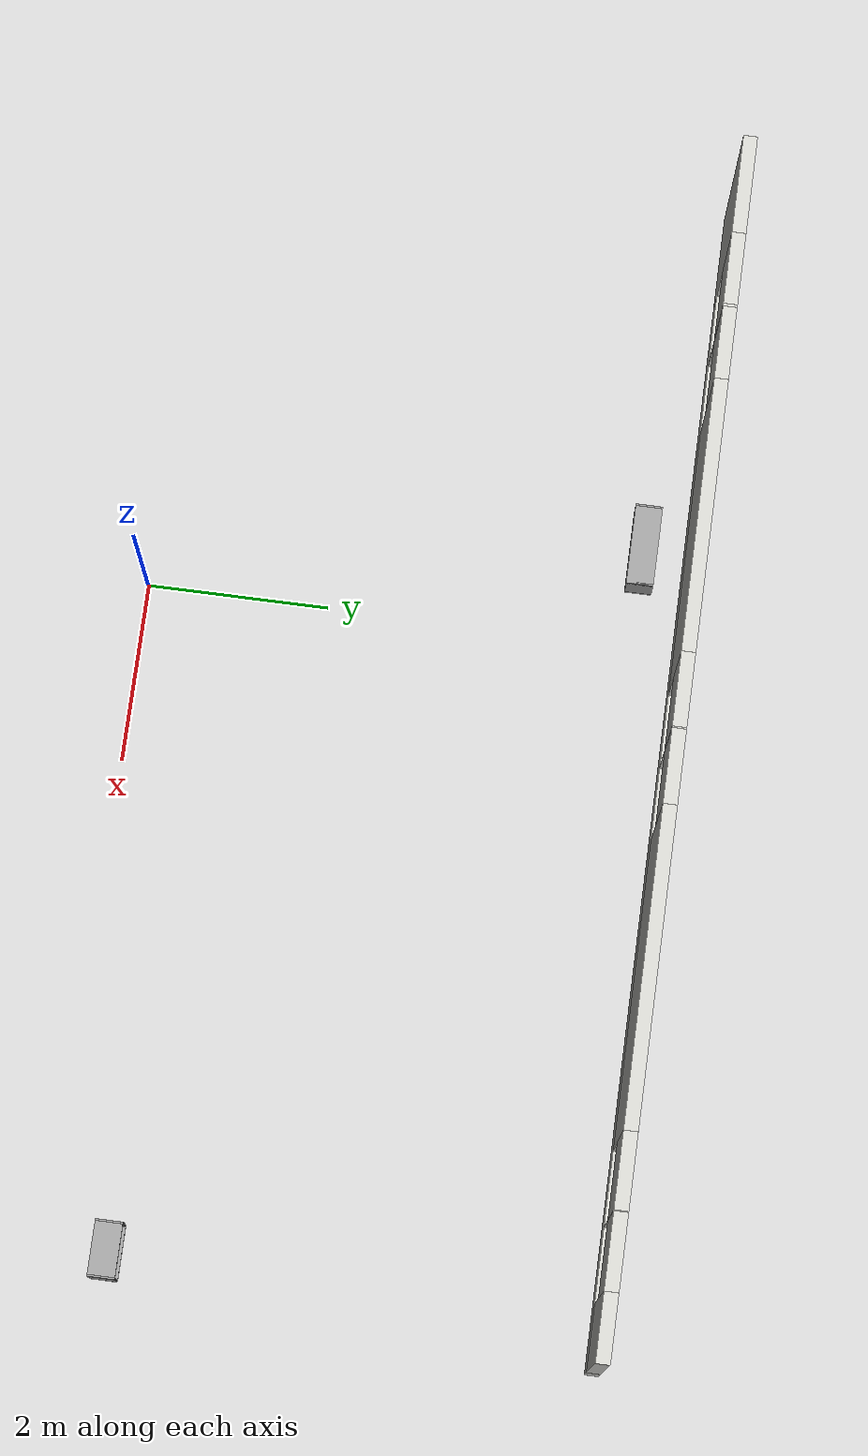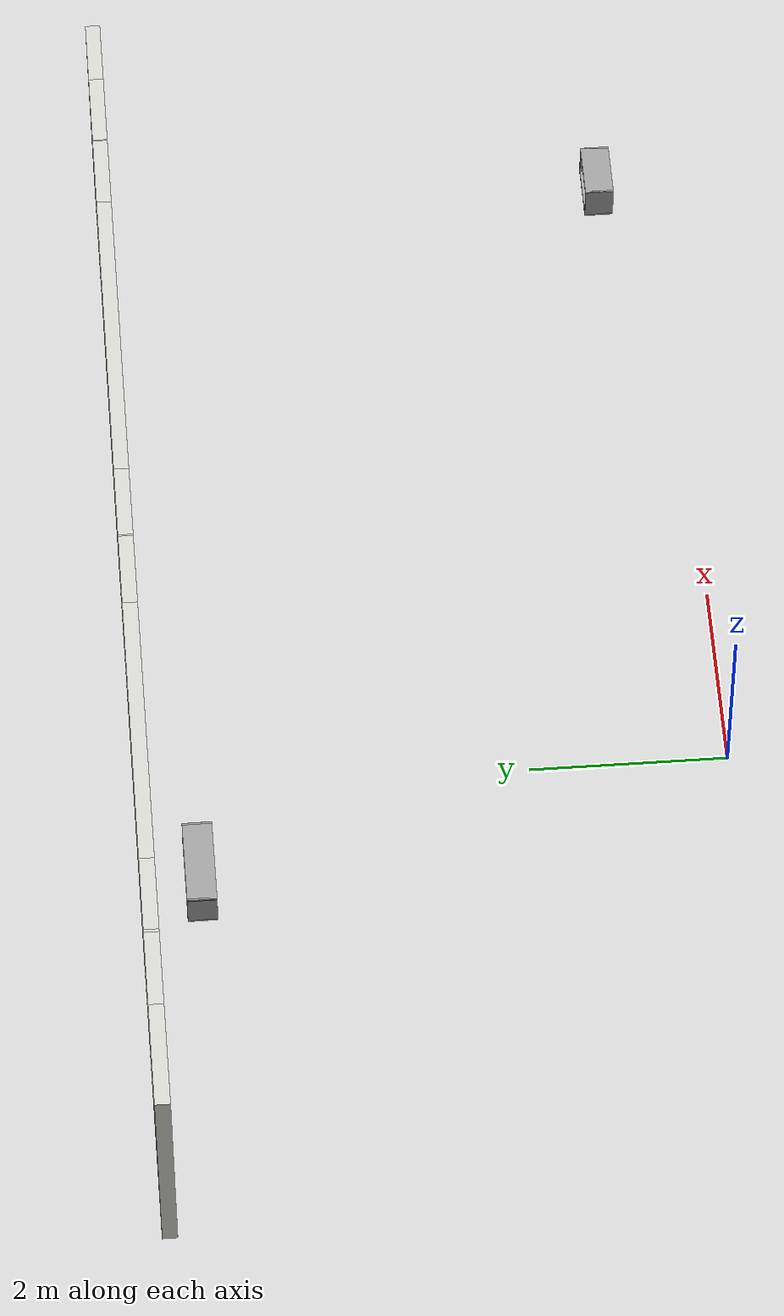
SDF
<sdf version="1.6">
 <world name="default">
  <model name="ground_plane">
   <static>1</static>
   <link name="link">
    <collision name="collision">
     <geometry><plane><normal>0 0 1</normal><size>100 100</size></plane></geometry>
     <surface><friction><ode><mu>100</mu><mu2>50</mu2></ode></friction></surface>
    </collision>
    <visual name="visual">
     <cast_shadows>0</cast_shadows>
     <geometry><plane><normal>0 0 1</normal><size>100 100</size></plane></geometry>
     <material>
      <script><uri>file://media/materials/scripts/gazebo.material</uri><name>Gazebo/Grey</name></script>
     </material>
    </visual>
   </link>
  </model>
  <model name="wall_window_tiles">
   <pose>1.41579 5.89691 0 0 -0 0</pose>
   <link name="Wall_0">
    <visual name="Wall_0_Visual_0">
     <pose>-5.9525 0 1.25 0 -0 0</pose>
     <geometry><box><size>1.095 0.15 2.5</size></box></geometry>
     <material>
      <script><uri>file://media/materials/scripts/gazebo.material</uri><name>Gazebo/CeilingTiled</name></script>
      <ambient>1 1 1 1</ambient>
     </material>
     <meta><layer>0</layer></meta>
    </visual>
    <collision name="Wall_0_Collision_0">
     <geometry><box><size>1.095 0.15 2.5</size></box></geometry>
     <pose>-5.9525 0 1.25 0 -0 0</pose>
    </collision>
    <visual name="Wall_0_Visual_1">
     <pose>0.5475 0 0.25 0 -0 0</pose>
     <geometry><box><size>11.905 0.15 0.5</size></box></geometry>
     <material>
      <script><uri>file://media/materials/scripts/gazebo.material</uri><name>Gazebo/CeilingTiled</name></script>
      <ambient>1 1 1 1</ambient>
     </material>
     <meta><layer>0</layer></meta>
    </visual>
    <collision name="Wall_0_Collision_1">
     <geometry><box><size>11.905 0.15 0.5</size></box></geometry>
     <pose>0.5475 0 0.25 0 -0 0</pose>
    </collision>
    <visual name="Wall_0_Visual_2">
     <pose>-4.59 0 1.5 0 -0 0</pose>
     <geometry><box><size>0.03 0.15 2</size></box></geometry>
     <material>
      <script><uri>file://media/materials/scripts/gazebo.material</uri><name>Gazebo/CeilingTiled</name></script>
      <ambient>1 1 1 1</ambient>
     </material>
     <meta><layer>0</layer></meta>
    </visual>
    <collision name="Wall_0_Collision_2">
     <geometry><box><size>0.03 0.15 2</size></box></geometry>
     <pose>-4.59 0 1.5 0 -0 0</pose>
    </collision>
    <visual name="Wall_0_Visual_3">
     <pose>-2.28975 0 1.5 0 -0 0</pose>
     <geometry><box><size>2.9705 0.15 2</size></box></geometry>
     <material>
      <script><uri>file://media/materials/scripts/gazebo.material</uri><name>Gazebo/CeilingTiled</name></script>
      <ambient>1 1 1 1</ambient>
     </material>
     <meta><layer>0</layer></meta>
    </visual>
    <collision name="Wall_0_Collision_3">
     <geometry><box><size>2.9705 0.15 2</size></box></geometry>
     <pose>-2.28975 0 1.5 0 -0 0</pose>
    </collision>
    <visual name="Wall_0_Visual_4">
     <pose>0.00375 0 1.5 0 -0 0</pose>
     <geometry><box><size>0.0165 0.15 2</size></box></geometry>
     <material>
      <script><uri>file://media/materials/scripts/gazebo.material</uri><name>Gazebo/CeilingTiled</name></script>
      <ambient>1 1 1 1</ambient>
     </material>
     <meta><layer>0</layer></meta>
    </visual>
    <collision name="Wall_0_Collision_4">
     <geometry><box><size>0.0165 0.15 2</size></box></geometry>
     <pose>0.00375 0 1.5 0 -0 0</pose>
    </collision>
    <visual name="Wall_0_Visual_5">
     <pose>2.4935 0 1.5 0 -0 0</pose>
     <geometry><box><size>3.363 0.15 2</size></box></geometry>
     <material>
      <script><uri>file://media/materials/scripts/gazebo.material</uri><name>Gazebo/CeilingTiled</name></script>
      <ambient>1 1 1 1</ambient>
     </material>
     <meta><layer>0</layer></meta>
    </visual>
    <collision name="Wall_0_Collision_5">
     <geometry><box><size>3.363 0.15 2</size></box></geometry>
     <pose>2.4935 0 1.5 0 -0 0</pose>
    </collision>
    <visual name="Wall_0_Visual_6">
     <pose>4.98 0 1.5 0 -0 0</pose>
     <geometry><box><size>0.01 0.15 2</size></box></geometry>
     <material>
      <script><uri>file://media/materials/scripts/gazebo.material</uri><name>Gazebo/CeilingTiled</name></script>
      <ambient>1 1 1 1</ambient>
     </material>
     <meta><layer>0</layer></meta>
    </visual>
    <collision name="Wall_0_Collision_6">
     <geometry><box><size>0.01 0.15 2</size></box></geometry>
     <pose>4.98 0 1.5 0 -0 0</pose>
    </collision>
    <visual name="Wall_0_Visual_7">
     <pose>6.1425 0 1.5 0 -0 0</pose>
     <geometry><box><size>0.715 0.15 2</size></box></geometry>
     <material>
      <script><uri>file://media/materials/scripts/gazebo.material</uri><name>Gazebo/CeilingTiled</name></script>
      <ambient>1 1 1 1</ambient>
     </material>
     <meta><layer>0</layer></meta>
    </visual>
    <collision name="Wall_0_Collision_7">
     <geometry><box><size>0.715 0.15 2</size></box></geometry>
     <pose>6.1425 0 1.5 0 -0 0</pose>
    </collision>
    <visual name="Wall_0_Visual_8">
     <pose>-5.005 0 1.9 0 -0 0</pose>
     <geometry><box><size>0.8 0.15 1.2</size></box></geometry>
     <material>
      <script><uri>file://media/materials/scripts/gazebo.material</uri><name>Gazebo/CeilingTiled</name></script>
      <ambient>1 1 1 1</ambient>
     </material>
     <meta><layer>0</layer></meta>
    </visual>
    <collision name="Wall_0_Collision_8">
     <geometry><box><size>0.8 0.15 1.2</size></box></geometry>
     <pose>-5.005 0 1.9 0 -0 0</pose>
    </collision>
    <visual name="Wall_0_Visual_9">
     <pose>-4.175 0 1.9 0 -0 0</pose>
     <geometry><box><size>0.8 0.15 1.2</size></box></geometry>
     <material>
      <script><uri>file://media/materials/scripts/gazebo.material</uri><name>Gazebo/CeilingTiled</name></script>
      <ambient>1 1 1 1</ambient>
     </material>
     <meta><layer>0</layer></meta>
    </visual>
    <collision name="Wall_0_Collision_9">
     <geometry><box><size>0.8 0.15 1.2</size></box></geometry>
     <pose>-4.175 0 1.9 0 -0 0</pose>
    </collision>
    <visual name="Wall_0_Visual_10">
     <pose>-0.4045 0 1.9 0 -0 0</pose>
     <geometry><box><size>0.8 0.15 1.2</size></box></geometry>
     <material>
      <script><uri>file://media/materials/scripts/gazebo.material</uri><name>Gazebo/CeilingTiled</name></script>
      <ambient>1 1 1 1</ambient>
     </material>
     <meta><layer>0</layer></meta>
    </visual>
    <collision name="Wall_0_Collision_10">
     <geometry><box><size>0.8 0.15 1.2</size></box></geometry>
     <pose>-0.4045 0 1.9 0 -0 0</pose>
    </collision>
    <visual name="Wall_0_Visual_11">
     <pose>0.412 0 1.9 0 -0 0</pose>
     <geometry><box><size>0.8 0.15 1.2</size></box></geometry>
     <material>
      <script><uri>file://media/materials/scripts/gazebo.material</uri><name>Gazebo/CeilingTiled</name></script>
      <ambient>1 1 1 1</ambient>
     </material>
     <meta><layer>0</layer></meta>
    </visual>
    <collision name="Wall_0_Collision_11">
     <geometry><box><size>0.8 0.15 1.2</size></box></geometry>
     <pose>0.412 0 1.9 0 -0 0</pose>
    </collision>
    <visual name="Wall_0_Visual_12">
     <pose>4.575 0 1.9 0 -0 0</pose>
     <geometry><box><size>0.8 0.15 1.2</size></box></geometry>
     <material>
      <script><uri>file://media/materials/scripts/gazebo.material</uri><name>Gazebo/CeilingTiled</name></script>
      <ambient>1 1 1 1</ambient>
     </material>
     <meta><layer>0</layer></meta>
    </visual>
    <collision name="Wall_0_Collision_12">
     <geometry><box><size>0.8 0.15 1.2</size></box></geometry>
     <pose>4.575 0 1.9 0 -0 0</pose>
    </collision>
    <visual name="Wall_0_Visual_13">
     <pose>5.385 0 1.9 0 -0 0</pose>
     <geometry><box><size>0.8 0.15 1.2</size></box></geometry>
     <material>
      <script><uri>file://media/materials/scripts/gazebo.material</uri><name>Gazebo/CeilingTiled</name></script>
      <ambient>1 1 1 1</ambient>
     </material>
     <meta><layer>0</layer></meta>
    </visual>
    <collision name="Wall_0_Collision_13">
     <geometry><box><size>0.8 0.15 1.2</size></box></geometry>
     <pose>5.385 0 1.9 0 -0 0</pose>
    </collision>
   </link>
   <static>1</static>
  </model>
  <model name="Wall_Cabinet_36x15W">
   <link name="Wall_0">
    <pose>0 0 0.01 0 -0 0</pose>
    <inertial>
     <mass>1.9796</mass>
     <inertia><ixx>0.0145</ixx><iyy>0.1511</iyy><izz>0.1367</izz><ixy>0</ixy><ixz>0</ixz><iyz>0</iyz></inertia>
    </inertial>
    <collision name="Wall_0_Collision"><geometry><box><size>0.91 0.296 0.02</size></box></geometry></collision>
    <visual name="Wall_0_Visual">
     <geometry><box><size>0.91 0.296 0.02</size></box></geometry>
     <material>
      <script><uri>file://media/materials/scripts/gazebo.material</uri><name>Gazebo/Grey</name></script>
      <ambient>1 1 1 1</ambient>
     </material>
    </visual>
   </link>
   <joint name="0_2" type="fixed">
    <pose>-0.455 0 0 0 -0 0</pose>
    <parent>Wall_2</parent>
    <child>Wall_0</child>
    <axis>
     <xyz>0 0 1</xyz>
     <use_parent_model_frame>0</use_parent_model_frame>
     <limit><lower>-1e+16</lower><upper>1e+16</upper></limit>
    </axis>
   </joint>
   <joint name="0_4" type="fixed">
    <pose>0.455 0 0 0 -0 0</pose>
    <parent>Wall_4</parent>
    <child>Wall_0</child>
    <axis>
     <xyz>0 0 1</xyz>
     <use_parent_model_frame>0</use_parent_model_frame>
     <limit><lower>-1e+16</lower><upper>1e+16</upper></limit>
    </axis>
   </joint>
   <joint name="0_8" type="fixed">
    <pose>0 -0.148 0 0 -0 0</pose>
    <parent>Wall_8</parent>
    <child>Wall_0</child>
    <axis>
     <xyz>0 0 1</xyz>
     <use_parent_model_frame>0</use_parent_model_frame>
     <limit><lower>-1e+16</lower><upper>1e+16</upper></limit>
    </axis>
   </joint>
   <link name="Wall_2">
    <pose>-0.445 0 0.192 0 -0 0</pose>
    <inertial>
     <mass>0.8353</mass>
     <inertia><ixx>0.0061</ixx><iyy>0.0164</iyy><izz>0.0103</izz><ixy>0</ixy><ixz>0</ixz><iyz>0</iyz></inertia>
    </inertial>
    <collision name="Wall_2_Collision"><geometry><box><size>0.02 0.296 0.384</size></box></geometry></collision>
    <visual name="Wall_2_Visual">
     <geometry><box><size>0.02 0.296 0.384</size></box></geometry>
     <material>
      <script><uri>file://media/materials/scripts/gazebo.material</uri><name>Gazebo/Grey</name></script>
      <ambient>1 1 1 1</ambient>
     </material>
    </visual>
   </link>
   <link name="Wall_4">
    <pose>0.445 0 0.192 0 -0 0</pose>
    <inertial>
     <mass>0.8353</mass>
     <inertia><ixx>0.0061</ixx><iyy>0.0164</iyy><izz>0.0103</izz><ixy>0</ixy><ixz>0</ixz><iyz>0</iyz></inertia>
    </inertial>
    <collision name="Wall_4_Collision"><geometry><box><size>0.02 0.296 0.384</size></box></geometry></collision>
    <visual name="Wall_4_Visual">
     <geometry><box><size>0.02 0.296 0.384</size></box></geometry>
     <material>
      <script><uri>file://media/materials/scripts/gazebo.material</uri><name>Gazebo/Grey</name></script>
      <ambient>1 1 1 1</ambient>
     </material>
    </visual>
   </link>
   <link name="Wall_6">
    <pose>0 0 0.374 0 -0 0</pose>
    <inertial>
     <mass>1.9796</mass>
     <inertia><ixx>0.0145</ixx><iyy>0.1511</iyy><izz>0.1367</izz><ixy>0</ixy><ixz>0</ixz><iyz>0</iyz></inertia>
    </inertial>
    <collision name="Wall_6_Collision"><geometry><box><size>0.91 0.296 0.02</size></box></geometry></collision>
    <visual name="Wall_6_Visual">
     <geometry><box><size>0.91 0.296 0.02</size></box></geometry>
     <material>
      <script><uri>file://media/materials/scripts/gazebo.material</uri><name>Gazebo/Grey</name></script>
      <ambient>1 1 1 1</ambient>
     </material>
    </visual>
   </link>
   <joint name="6_2" type="fixed">
    <pose>-0.455 0 0 0 -0 0</pose>
    <parent>Wall_2</parent>
    <child>Wall_6</child>
    <axis>
     <xyz>0 0 1</xyz>
     <use_parent_model_frame>0</use_parent_model_frame>
     <limit><lower>-1e+16</lower><upper>1e+16</upper></limit>
    </axis>
   </joint>
   <joint name="6_4" type="fixed">
    <pose>0.455 0 0 0 -0 0</pose>
    <parent>Wall_4</parent>
    <child>Wall_6</child>
    <axis>
     <xyz>0 0 1</xyz>
     <use_parent_model_frame>0</use_parent_model_frame>
     <limit><lower>-1e+16</lower><upper>1e+16</upper></limit>
    </axis>
   </joint>
   <joint name="6_8" type="fixed">
    <pose>0 -0.148 0 0 -0 0</pose>
    <parent>Wall_8</parent>
    <child>Wall_6</child>
    <axis>
     <xyz>0 0 1</xyz>
     <use_parent_model_frame>0</use_parent_model_frame>
     <limit><lower>-1e+16</lower><upper>1e+16</upper></limit>
    </axis>
   </joint>
   <link name="Wall_8">
    <pose>0 -0.138 0.19 0 -0 0</pose>
    <inertial>
     <mass>2.5302</mass>
     <inertia><ixx>0.0305</ixx><iyy>0.1732</iyy><izz>0.2035</izz><ixy>0</ixy><ixz>0</ixz><iyz>0</iyz></inertia>
    </inertial>
    <collision name="Wall_8_Collision"><geometry><box><size>0.906 0.02 0.38</size></box></geometry></collision>
    <visual name="Wall_8_Visual">
     <geometry><box><size>0.906 0.02 0.38</size></box></geometry>
     <material>
      <script><uri>file://media/materials/scripts/gazebo.material</uri><name>Gazebo/Grey</name></script>
      <ambient>1 1 1 1</ambient>
     </material>
    </visual>
   </link>
   <joint name="8_2" type="fixed">
    <pose>-0.453 0 0 0 -0 0</pose>
    <parent>Wall_2</parent>
    <child>Wall_8</child>
    <axis>
     <xyz>0 1 0</xyz>
     <use_parent_model_frame>0</use_parent_model_frame>
     <limit><lower>-1e+16</lower><upper>1e+16</upper></limit>
    </axis>
   </joint>
   <joint name="8_4" type="fixed">
    <pose>0.453 0 0 0 -0 0</pose>
    <parent>Wall_4</parent>
    <child>Wall_8</child>
    <axis>
     <xyz>0 1 0</xyz>
     <use_parent_model_frame>0</use_parent_model_frame>
     <limit><lower>-1e+16</lower><upper>1e+16</upper></limit>
    </axis>
   </joint>
   <static>1</static>
   <pose>-1.06804 5.36866 0 0 -0 0</pose>
  </model>
  <model name="Wall_Cabinet_24x15W">
   <link name="Wall_41">
    <pose>0 0 0.01 0 -0 0</pose>
    <inertial>
     <mass>1.4983</mass>
     <inertia><ixx>0.011</ixx><iyy>0.0571</iyy><izz>0.0462</izz><ixy>0</ixy><ixz>0</ixz><iyz>0</iyz></inertia>
    </inertial>
    <collision name="Wall_41_Collision"><geometry><box><size>0.608 0.296 0.02</size></box></geometry></collision>
    <visual name="Wall_41_Visual">
     <geometry><box><size>0.608 0.296 0.02</size></box></geometry>
     <material>
      <script><uri>file://media/materials/scripts/gazebo.material</uri><name>Gazebo/Grey</name></script>
      <ambient>1 1 1 1</ambient>
     </material>
    </visual>
    <pose>0.000184 0.181953 0 0 -0 0</pose>
   </link>
   <joint name="41_43" type="fixed">
    <pose>-0.304 0 0 0 -0 0</pose>
    <parent>Wall_43</parent>
    <child>Wall_41</child>
    <axis>
     <xyz>0 0 1</xyz>
     <use_parent_model_frame>0</use_parent_model_frame>
     <limit><lower>-1e+16</lower><upper>1e+16</upper></limit>
    </axis>
   </joint>
   <joint name="41_45" type="fixed">
    <pose>0.304 0 0 0 -0 0</pose>
    <parent>Wall_45</parent>
    <child>Wall_41</child>
    <axis>
     <xyz>0 0 1</xyz>
     <use_parent_model_frame>0</use_parent_model_frame>
     <limit><lower>-1e+16</lower><upper>1e+16</upper></limit>
    </axis>
   </joint>
   <joint name="41_49" type="fixed">
    <pose>0 -0.148 0 0 -0 0</pose>
    <parent>Wall_49</parent>
    <child>Wall_41</child>
    <axis>
     <xyz>0 0 1</xyz>
     <use_parent_model_frame>0</use_parent_model_frame>
     <limit><lower>-1e+16</lower><upper>1e+16</upper></limit>
    </axis>
   </joint>
   <link name="Wall_43">
    <pose>-0.294 0 0.192 0 -0 0</pose>
    <inertial>
     <mass>0.9463</mass>
     <inertia><ixx>0.0069</ixx><iyy>0.0185</iyy><izz>0.0117</izz><ixy>0</ixy><ixz>0</ixz><iyz>0</iyz></inertia>
    </inertial>
    <collision name="Wall_43_Collision"><geometry><box><size>0.02 0.296 0.384</size></box></geometry></collision>
    <visual name="Wall_43_Visual">
     <geometry><box><size>0.02 0.296 0.384</size></box></geometry>
     <material>
      <script><uri>file://media/materials/scripts/gazebo.material</uri><name>Gazebo/Grey</name></script>
      <ambient>1 1 1 1</ambient>
     </material>
    </visual>
   </link>
   <link name="Wall_45">
    <pose>0.294 0 0.192 0 -0 0</pose>
    <inertial>
     <mass>0.9463</mass>
     <inertia><ixx>0.0069</ixx><iyy>0.0185</iyy><izz>0.0117</izz><ixy>0</ixy><ixz>0</ixz><iyz>0</iyz></inertia>
    </inertial>
    <collision name="Wall_45_Collision"><geometry><box><size>0.02 0.296 0.384</size></box></geometry></collision>
    <visual name="Wall_45_Visual">
     <geometry><box><size>0.02 0.296 0.384</size></box></geometry>
     <material>
      <script><uri>file://media/materials/scripts/gazebo.material</uri><name>Gazebo/Grey</name></script>
      <ambient>1 1 1 1</ambient>
     </material>
    </visual>
   </link>
   <link name="Wall_47">
    <pose>0 0 0.374 0 -0 0</pose>
    <inertial>
     <mass>1.4983</mass>
     <inertia><ixx>0.011</ixx><iyy>0.0571</iyy><izz>0.0462</izz><ixy>0</ixy><ixz>0</ixz><iyz>0</iyz></inertia>
    </inertial>
    <collision name="Wall_47_Collision"><geometry><box><size>0.608 0.296 0.02</size></box></geometry></collision>
    <visual name="Wall_47_Visual">
     <geometry><box><size>0.608 0.296 0.02</size></box></geometry>
     <material>
      <script><uri>file://media/materials/scripts/gazebo.material</uri><name>Gazebo/Grey</name></script>
      <ambient>1 1 1 1</ambient>
     </material>
    </visual>
   </link>
   <joint name="47_43" type="fixed">
    <pose>-0.304 0 0 0 -0 0</pose>
    <parent>Wall_43</parent>
    <child>Wall_47</child>
    <axis>
     <xyz>0 0 1</xyz>
     <use_parent_model_frame>0</use_parent_model_frame>
     <limit><lower>-1e+16</lower><upper>1e+16</upper></limit>
    </axis>
   </joint>
   <joint name="47_45" type="fixed">
    <pose>0.304 0 0 0 -0 0</pose>
    <parent>Wall_45</parent>
    <child>Wall_47</child>
    <axis>
     <xyz>0 0 1</xyz>
     <use_parent_model_frame>0</use_parent_model_frame>
     <limit><lower>-1e+16</lower><upper>1e+16</upper></limit>
    </axis>
   </joint>
   <joint name="47_49" type="fixed">
    <pose>0 -0.148 0 0 -0 0</pose>
    <parent>Wall_49</parent>
    <child>Wall_47</child>
    <axis>
     <xyz>0 0 1</xyz>
     <use_parent_model_frame>0</use_parent_model_frame>
     <limit><lower>-1e+16</lower><upper>1e+16</upper></limit>
    </axis>
   </joint>
   <link name="Wall_49">
    <pose>0 -0.138 0.19 0 -0 0</pose>
    <inertial>
     <mass>1.9108</mass>
     <inertia><ixx>0.0231</ixx><iyy>0.0582</iyy><izz>0.0811</izz><ixy>0</ixy><ixz>0</ixz><iyz>0</iyz></inertia>
    </inertial>
    <collision name="Wall_49_Collision"><geometry><box><size>0.604 0.02 0.38</size></box></geometry></collision>
    <visual name="Wall_49_Visual">
     <geometry><box><size>0.604 0.02 0.38</size></box></geometry>
     <material>
      <script><uri>file://media/materials/scripts/gazebo.material</uri><name>Gazebo/Grey</name></script>
      <ambient>1 1 1 1</ambient>
     </material>
    </visual>
   </link>
   <joint name="49_43" type="fixed">
    <pose>-0.302 0 0 0 -0 0</pose>
    <parent>Wall_41</parent>
    <child>Wall_49</child>
    <axis>
     <xyz>0 1 0</xyz>
     <use_parent_model_frame>0</use_parent_model_frame>
     <limit><lower>-1e+16</lower><upper>1e+16</upper></limit>
    </axis>
   </joint>
   <joint name="49_45" type="fixed">
    <pose>0.302 0 0 0 -0 0</pose>
    <parent>Wall_45</parent>
    <child>Wall_49</child>
    <axis>
     <xyz>0 1 0</xyz>
     <use_parent_model_frame>0</use_parent_model_frame>
     <limit><lower>-1e+16</lower><upper>1e+16</upper></limit>
    </axis>
   </joint>
   <static>1</static>
   <pose>7.30112 0.655393 0 0 -0 0</pose>
  </model>
 </world>
</sdf>
